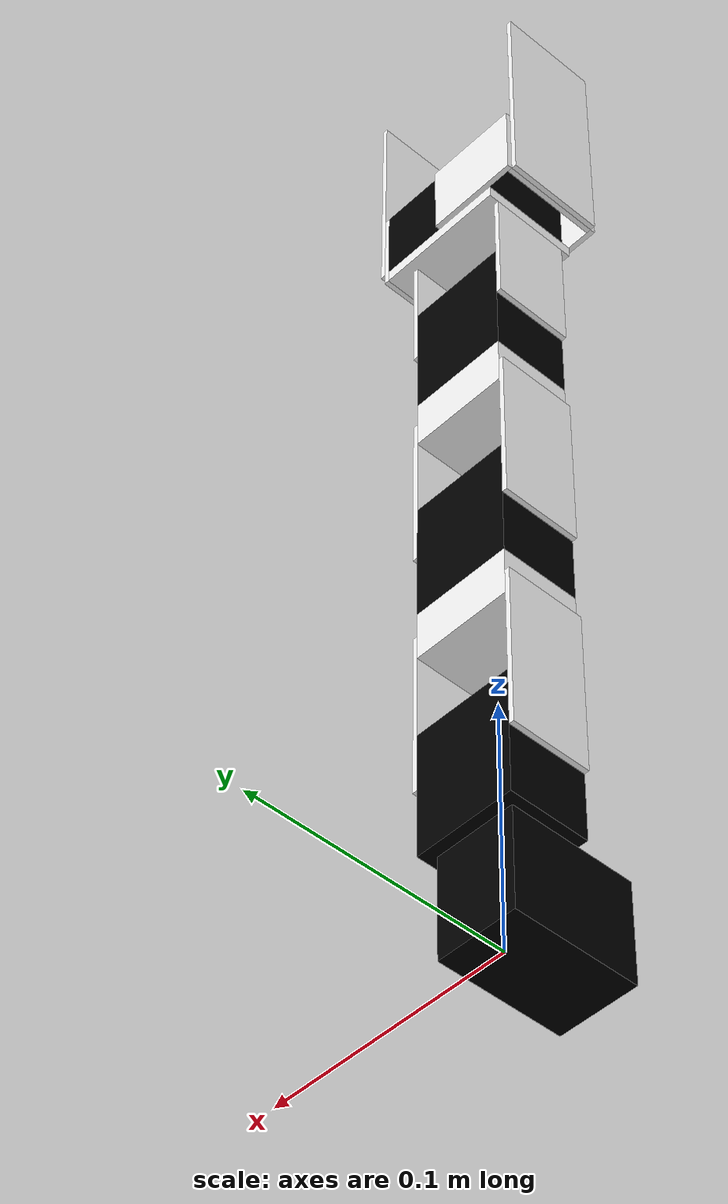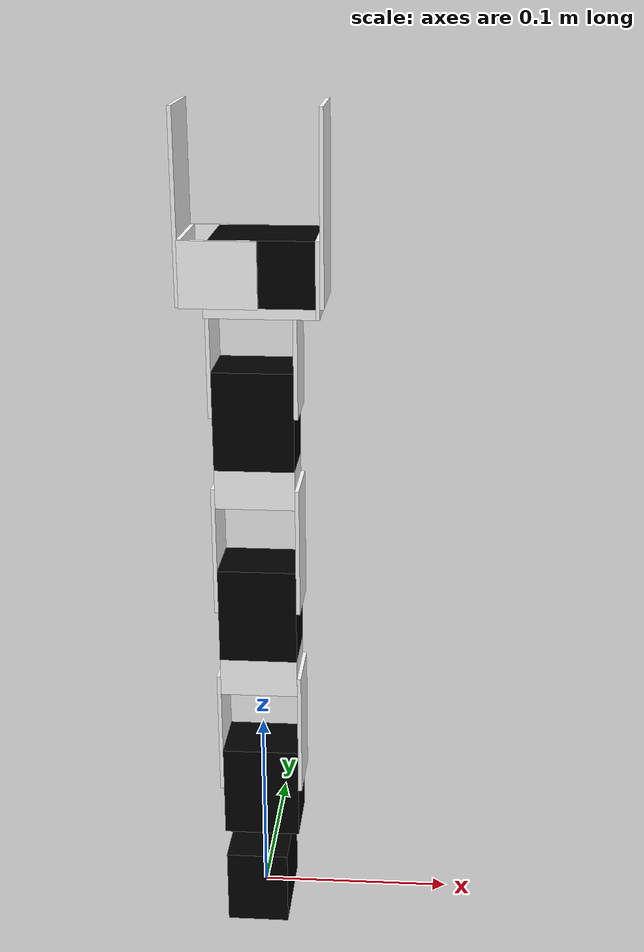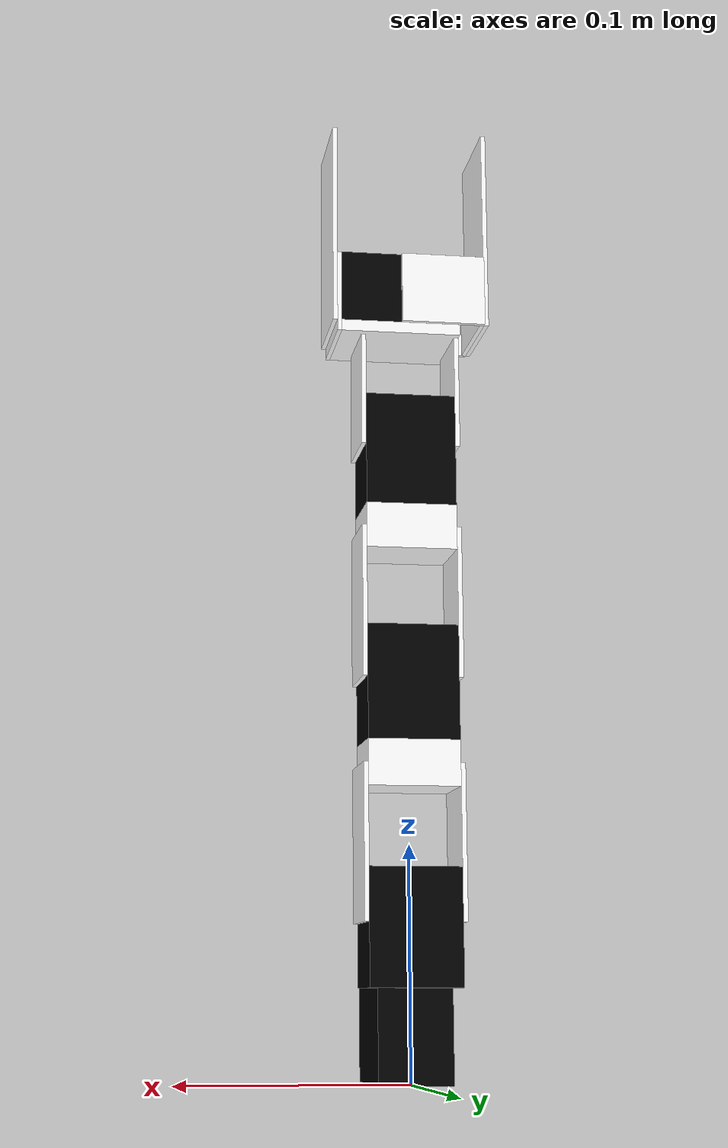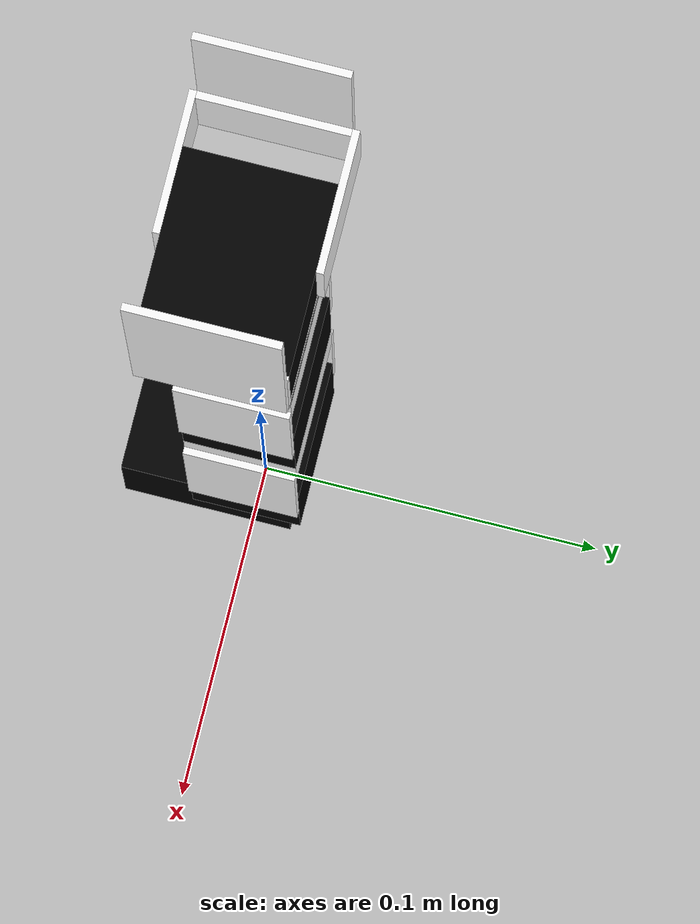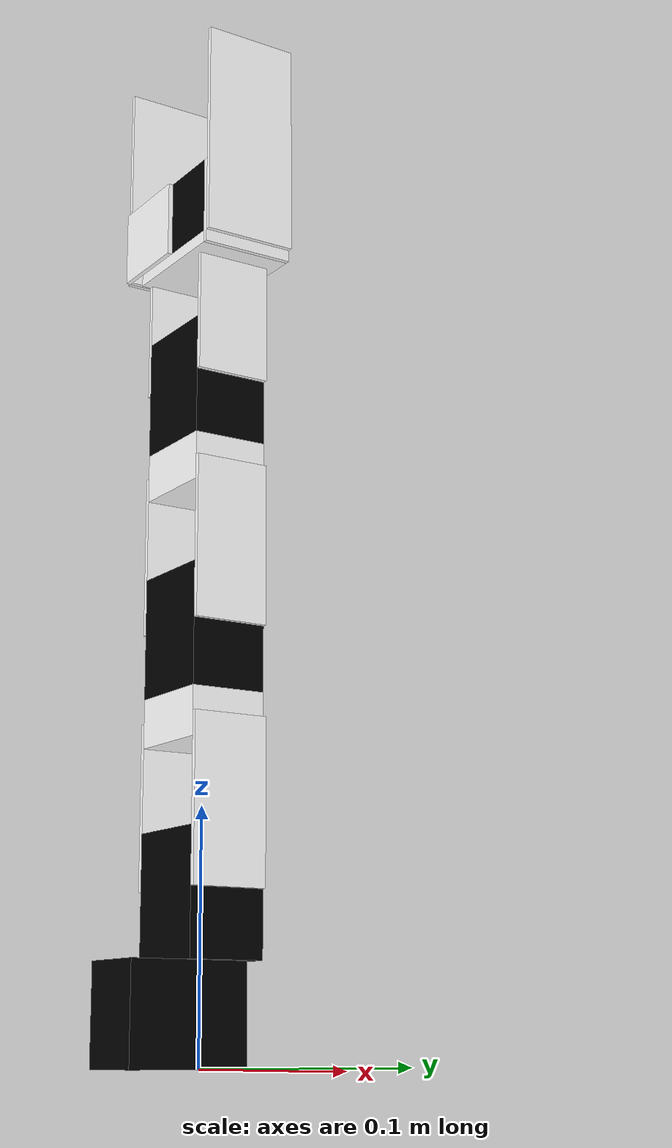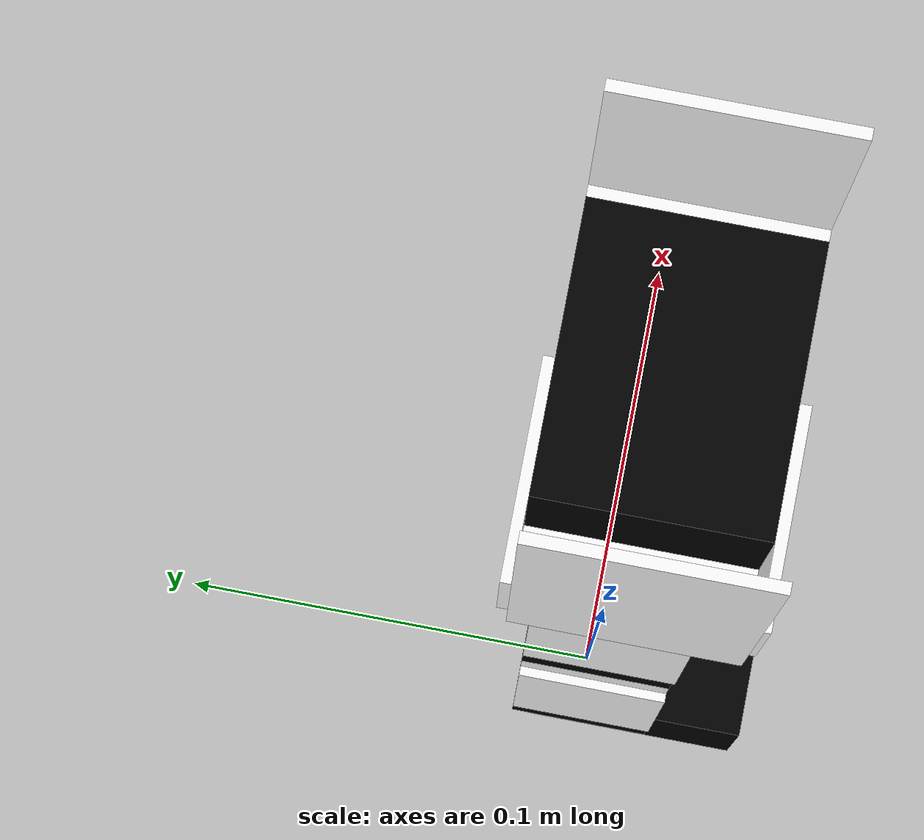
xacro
<?xml version="1.0"?>

<robot name="MYRAbot-arm"
       xmlns:xi="http://www.w3.org/2001/XInclude"
       xmlns:gazebo="http://playerstage.sourceforge.net/gazebo/xmlschema/#gz"
       xmlns:model="http://playerstage.sourceforge.net/gazebo/xmlschema/#model"
       xmlns:sensor="http://playerstage.sourceforge.net/gazebo/xmlschema/#sensor"
       xmlns:body="http://playerstage.sourceforge.net/gazebo/xmlschema/#body"
       xmlns:geom="http://playerstage.sourceforge.net/gazebo/xmlschema/#geom"
       xmlns:joint="http://playerstage.sourceforge.net/gazebo/xmlschema/#joint"
       xmlns:interface="http://playerstage.sourceforge.net/gazebo/xmlschema/#interface"
       xmlns:rendering="http://playerstage.sourceforge.net/gazebo/xmlschema/#rendering"
       xmlns:renderable="http://playerstage.sourceforge.net/gazebo/xmlschema/#renderable"
       xmlns:controller="http://playerstage.sourceforge.net/gazebo/xmlschema/#controller"
       xmlns:physics="http://playerstage.sourceforge.net/gazebo/xmlschema/#physics"
       xmlns:xacro="http://ros.org/wiki/xacro">

	<xacro:include filename="$(find myrabot_arm_model_b)/urdf/brazo.xacro" />

	<link name="world" />

	<brazo parent="world">
		<origin rpy="0 0 0" xyz="0 0 0"/>
	</brazo>

</robot>

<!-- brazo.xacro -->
<robot xmlns:xacro="http://ros.org/wiki/xacro">

	<xacro:include filename="$(find myrabot_arm_model_b)/urdf/brazo-macros.xacro" />

<xacro:macro name="brazo" params="parent *origin">

  <joint name="fixed" type="fixed">
    <parent link="${parent}"/>
    <child link="base_brazo_link"/>
    <insert_block name="origin" />
    <axis xyz="0 0 1" />
  </joint>

  <link name="base_brazo_link">
    <visual>
      <geometry>
        <box size="0.032 0.05 0.04"/>
      </geometry>
      <origin rpy="0 0 0" xyz="0 -0.0135 0.020"/>
      <material name="black">
        <color rgba="0 0 0 1"/>
      </material>
    </visual>
    <collision>
      <origin rpy="0 0 0" xyz="0 -0.0135 0.020"/>
      <geometry>
        <box size="0.032 0.05 0.04"/>
      </geometry>
    </collision>
    <inertial>
      <origin rpy="0 0 0" xyz="0 -0.0135 0.020"/>
      <mass value="0.055"/>
	  <default_inertia_servos />
    </inertial>
  </link>

  <joint name="base_brazo" type="revolute">
    <parent link="base_brazo_link"/>
    <child link="hombro_link"/>
    <origin xyz="0 0 0.04" rpy="0 0 0" />
    <axis xyz="0 0 1" />
	<default_limit />
	<default_dynamics />
  </joint>

  <link name="hombro_link">
    <visual>
      <geometry>
        <box size="0.04 0.032 0.05"/>
      </geometry>
      <origin rpy="0 0 0" xyz="0 0 0.025"/>
      <material name="black" />
    </visual>
    <collision>
      <origin rpy="0 0 0" xyz="0 0 0.025"/>
	  <geometry>
        <box size="0.04 0.032 0.05"/>
      </geometry>
    </collision>
    <inertial>
      <origin rpy="0 0 0" xyz="0 0 0.025"/>
      <mass value="0.055"/>
	  <default_inertia_servos />
    </inertial>
  </link>

  <joint name="arti1" type="revolute">
    <parent link="hombro_link"/>
    <child link="brazo_link"/>
    <origin xyz="0 0 0.0385" rpy="0 0 0" />
	<axis xyz="1 0 0" />
	<default_limit />
	<default_dynamics />
  </joint>

  <!--brazo-->

<servo nombre="brazo" />

  <joint name="servo_arti1_B" type="fixed">
    <parent link="brazo_link"/>
    <child link="brazo_link_B"/>
    <origin xyz="0 0 0" rpy="0 0 0" />
	<axis xyz="1 0 0" />
  </joint>

<base nombre="brazo" />

  <joint name="servo_arti1_D" type="fixed">
    <parent link="brazo_link"/>
    <child link="brazo_link_SI"/>
    <origin xyz="0 0 0" rpy="0 0 0" />
	<axis xyz="1 0 0" />
  </joint>

<soporte nombre="brazo" simetrico="1" lado="I" />

  <joint name="servo_arti1_I" type="fixed">
    <parent link="brazo_link"/>
    <child link="brazo_link_SD"/>
    <origin xyz="0 0 0" rpy="0 0 0" />
	<axis xyz="1 0 0" />
  </joint>

<soporte nombre="brazo" simetrico="-1" lado="D" />

  <joint name="arti2" type="revolute">
    <parent link="brazo_link"/>
    <child link="antebrazo_link"/>
    <origin xyz="0 0 0.104" rpy="0 0 0" />
    <axis xyz="1 0 0" />
	<default_limit />
	<default_dynamics />
  </joint>

  <!--antebrazo-->

<servo nombre="antebrazo" />

  <joint name="servo_arti2_B" type="fixed">
    <parent link="antebrazo_link"/>
    <child link="antebrazo_link_B"/>
    <origin xyz="0 0 0" rpy="0 0 0" />
	<axis xyz="1 0 0" />
  </joint>

<base nombre="antebrazo" />

  <joint name="servo_arti2_D" type="fixed">
    <parent link="antebrazo_link"/>
    <child link="antebrazo_link_SI"/>
    <origin xyz="0 0 0" rpy="0 0 0" />
	<axis xyz="1 0 0" />
  </joint>

<soporte nombre="antebrazo" simetrico="1" lado="I" />

  <joint name="servo_arti2_I" type="fixed">
    <parent link="antebrazo_link"/>
    <child link="antebrazo_link_SD"/>
    <origin xyz="0 0 0" rpy="0 0 0" />
	<axis xyz="1 0 0" />
  </joint>

<soporte nombre="antebrazo" simetrico="-1" lado="D" />

  <joint name="arti3" type="revolute">
    <parent link="antebrazo_link"/>
    <child link="muneca_link"/>
    <origin xyz="0 0 0.104" rpy="0 0 0" />
    <axis xyz="1 0 0" />
	<default_limit />
	<default_dynamics />
  </joint>

  <!--muneca-->

  <link name="muneca_link">
    <visual>
      <geometry>
        <box size="0.05 0.04 0.032"/>
      </geometry>
      <origin rpy="0 0 0" xyz="0.00625 0 0.06"/>
      <material name="black" />
    </visual>
    <collision>
      <origin rpy="0 0 0" xyz="0.00625 0 0.06"/>
	  <geometry>
        <box size="0.05 0.04 0.032"/>
      </geometry>
    </collision>
    <inertial>
      <origin rpy="0 0 0" xyz="0.00625 0 0.06"/>
      <mass value="0.055"/>
	  <default_inertia_servos />
    </inertial>
  </link>

  <joint name="servo_arti3_B" type="fixed">
    <parent link="muneca_link"/>
    <child link="muneca_link_B"/>
    <origin xyz="0 0 0" rpy="0 0 0" />
	<axis xyz="1 0 0" />
  </joint>

  <link name="muneca_link_B">
	<visual>
      <geometry>
        <box size="0.05325 0.04 0.005"/>
      </geometry>
      <origin rpy="0 0 0" xyz="0.004625 0 0.0415"/>
      <material name="white">
		<color rgba="1 1 1 1"/>
      </material>
    </visual>
    <collision>
      <origin rpy="0 0 0" xyz="0.004625 0 0.0415"/>
	  <geometry>
        <box size="0.05325 0.04 0.005"/>
      </geometry>
    </collision>
    <inertial>
      <origin rpy="0 0 0" xyz="0.004625 0 0.0415"/>
      <mass value="0.0005"/>
	  <default_inertia />
    </inertial>
  </link>

  <joint name="servo_arti3_D" type="fixed">
    <parent link="muneca_link"/>
    <child link="muneca_link_SI"/>
    <origin xyz="0 0 0" rpy="0 0 0" />
	<axis xyz="1 0 0" />
  </joint>

  <link name="muneca_link_SI">
	<visual>
      <geometry>
        <box size="0.002 0.032 0.0555"/>
      </geometry>
      <origin rpy="0 0 0" xyz="0.021 0 0.01625"/>
      <material name="white">
		<color rgba="1 1 1 1"/>
      </material>
    </visual>
    <collision>
      <origin rpy="0 0 0" xyz="0.021 0 0.01625"/>
	  <geometry>
        <box size="0.002 0.032 0.0555"/>
      </geometry>
    </collision>
    <inertial>
      <origin rpy="0 0 0" xyz="0.021 0 0.01625"/>
      <mass value="0.0005"/>
	  <default_inertia />
    </inertial>
  </link>

  <joint name="servo_arti3_I" type="fixed">
    <parent link="muneca_link"/>
    <child link="muneca_link_SD"/>
    <origin xyz="0 0 0" rpy="0 0 0" />
	<axis xyz="1 0 0" />
  </joint>

  <link name="muneca_link_SD">
	<visual>
      <geometry>
        <box size="0.002 0.032 0.0555"/>
      </geometry>
      <origin rpy="0 0 0" xyz="-0.021 0 0.01625"/>
      <material name="white">
		<color rgba="1 1 1 1"/>
      </material>
    </visual>
    <collision>
      <origin rpy="0 0 0" xyz="-0.021 0 0.01625"/>
	  <geometry>
        <box size="0.002 0.032 0.0555"/>
      </geometry>
    </collision>
    <inertial>
      <origin rpy="0 0 0" xyz="-0.021 0 0.01625"/>
      <mass value="0.0005"/>
	  <default_inertia />
    </inertial>
  </link>

  <joint name="servo_arti3_P" type="fixed">
    <parent link="muneca_link"/>
    <child link="muneca_link_P"/>
    <origin xyz="0 0 0" rpy="0 0 0" />
	<axis xyz="1 0 0" />
  </joint>

  <!--pinza izquierda fija-->

  <link name="muneca_link_P">
	<visual>
      <geometry>
        <box size="0.002 0.04 0.092"/>
      </geometry>
      <origin rpy="0 0 0" xyz="0.03425 0 0.090"/>
      <material name="white">
		<color rgba="1 1 1 1"/>
      </material>
    </visual>
    <collision>
      <origin rpy="0 0 0" xyz="0.03425 0 0.090"/>
	  <geometry>
        <box size="0.002 0.04 0.092"/>
      </geometry>
    </collision>
    <inertial>
      <origin rpy="0 0 0" xyz="0.03425 0 0.090"/>
      <mass value="0.001"/>
	  <default_inertia />
    </inertial>
  </link>

  <joint name="servo_arti3_PS" type="fixed">
    <parent link="muneca_link"/>
    <child link="muneca_link_PS"/>
    <origin xyz="0 0 0" rpy="0 0 0" />
	<axis xyz="1 0 0" />
  </joint>

  <link name="muneca_link_PS">
	<visual>
      <geometry>
        <box size="0.002 0.04 0.037"/>
      </geometry>
      <origin rpy="0 0 0" xyz="0.03225 0 0.0575"/>
      <material name="white">
		<color rgba="1 1 1 1"/>
      </material>
    </visual>
    <collision>
      <origin rpy="0 0 0" xyz="0.03225 0 0.0575"/>
	  <geometry>
        <box size="0.002 0.04 0.037"/>
      </geometry>
    </collision>
    <inertial>
      <origin rpy="0 0 0" xyz="0.03225 0 0.0575"/>
      <mass value="0.0005"/>
	  <default_inertia />
    </inertial>
  </link>

  <joint name="pinza" type="revolute">
    <parent link="muneca_link"/>
    <child link="pinza_link"/>
    <origin xyz="-0.00725 0 0.06" rpy="0 0 0" />
    <axis xyz="0 1 0" />
	<default_limit />
	<default_dynamics />
  </joint>

  <!--pinza-->

  <link name="pinza_link">
	<visual>
      <geometry>
        <box size="0.002 0.04 0.092"/>
      </geometry>
      <origin rpy="0 0 0" xyz="-0.027 0 0.030"/>
      <material name="white">
		<color rgba="1 1 1 1"/>
      </material>
    </visual>
    <collision>
      <origin rpy="0 0 0" xyz="-0.027 0 0.030"/>
	  <geometry>
        <box size="0.002 0.04 0.092"/>
      </geometry>
    </collision>
    <inertial>
      <origin rpy="0 0 0" xyz="-0.027 0 0.030"/>
      <mass value="0.001"/>
 	  <default_inertia />
    </inertial>
  </link>

  <joint name="servo_pinza_B" type="fixed">
    <parent link="pinza_link"/>
    <child link="pinza_link_B"/>
    <origin xyz="0 0 0" rpy="0 0 0" />
	<axis xyz="1 0 0" />
  </joint>

  <link name="pinza_link_B">
	<visual>
      <geometry>
        <box size="0.002 0.04 0.032"/>
      </geometry>
      <origin rpy="0 0 0" xyz="-0.025 0 0"/>
      <material name="white">
		<color rgba="1 1 1 1"/>
      </material>
    </visual>
    <collision>
      <origin rpy="0 0 0" xyz="-0.025 0 0"/>
	  <geometry>
        <box size="0.002 0.04 0.032"/>
      </geometry>
    </collision>
    <inertial>
      <origin rpy="0 0 0" xyz="-0.025 0 0"/>
      <mass value="0.0005"/>
	  <default_inertia />
    </inertial>
  </link>

  <joint name="servo_pinza_D" type="fixed">
    <parent link="pinza_link"/>
    <child link="pinza_link_SI"/>
    <origin xyz="0 0 0" rpy="0 0 0" />
	<axis xyz="1 0 0" />
  </joint>

  <link name="pinza_link_SI">
	<visual>
      <geometry>
        <box size="0.0375 0.002 0.032"/>
      </geometry>
      <origin rpy="0 0 0" xyz="-0.00725 0.021 0"/>
      <material name="white">
		<color rgba="1 1 1 1"/>
      </material>
    </visual>
    <collision>
      <origin rpy="0 0 0" xyz="-0.00725 0.021 0"/>
	  <geometry>
        <box size="0.0375 0.002 0.032"/>
      </geometry>
    </collision>
    <inertial>
      <origin rpy="0 0 0" xyz="-0.00725 0.021 0"/>
      <mass value="0.0005"/>
	  <default_inertia />
    </inertial>
  </link>

  <joint name="servo_pinza_I" type="fixed">
    <parent link="pinza_link"/>
    <child link="pinza_link_SD"/>
    <origin xyz="0 0 0" rpy="0 0 0" />
	<axis xyz="1 0 0" />
  </joint>

  <link name="pinza_link_SD">
	<visual>
      <geometry>
        <box size="0.0375 0.002 0.032"/>
      </geometry>
      <origin rpy="0 0 0" xyz="-0.00725 -0.021 0"/>
      <material name="white">
		<color rgba="1 1 1 1"/>
      </material>
    </visual>
    <collision>
      <origin rpy="0 0 0" xyz="-0.00725 -0.021 0"/>
	  <geometry>
        <box size="0.0375 0.002 0.032"/>
      </geometry>
    </collision>
    <inertial>
      <origin rpy="0 0 0" xyz="-0.00725 -0.021 0"/>
      <mass value="0.0005"/>
	  <default_inertia />
    </inertial>
  </link>

<gazebo_propiedades_link nombre="base_brazo_link" material="brazo_fer/Black" />

<gazebo_propiedades_link nombre="hombro_link" material="brazo_fer/Black" />

<gazebo_propiedades_link nombre="brazo_link" material="brazo_fer/Black" />

<gazebo_propiedades_link nombre="antebrazo_link" material="brazo_fer/Black" />

<gazebo_propiedades_link nombre="muneca_link" material="brazo_fer/Black" />

<gazebo_propiedades_link nombre="brazo_link_B" material="brazo_fer/White" />

<gazebo_propiedades_link nombre="brazo_link_SI" material="brazo_fer/White" />

<gazebo_propiedades_link nombre="brazo_link_SD" material="brazo_fer/White" />

<gazebo_propiedades_link nombre="antebrazo_link_B" material="brazo_fer/White" />

<gazebo_propiedades_link nombre="antebrazo_link_SI" material="brazo_fer/White" />

<gazebo_propiedades_link nombre="antebrazo_link_SD" material="brazo_fer/White" />

<gazebo_propiedades_link nombre="muneca_link_B" material="brazo_fer/White" />

<gazebo_propiedades_link nombre="muneca_link_SI" material="brazo_fer/White" />

<gazebo_propiedades_link nombre="muneca_link_SD" material="brazo_fer/White" />

<gazebo_propiedades_link nombre="muneca_link_P" material="brazo_fer/WhiteTransparent" />

<gazebo_propiedades_link nombre="muneca_link_PS" material="brazo_fer/White" />

<gazebo_propiedades_link nombre="pinza_link" material="brazo_fer/WhiteTransparent" />

<gazebo_propiedades_link nombre="pinza_link_B" material="brazo_fer/White" />

<gazebo_propiedades_link nombre="pinza_link_SI" material="brazo_fer/White" />

<gazebo_propiedades_link nombre="pinza_link_SD" material="brazo_fer/White" />

<gazebo_propiedades_joint nombre="base_brazo" />

<gazebo_propiedades_joint nombre="arti1" />

<gazebo_propiedades_joint nombre="arti2" />

<gazebo_propiedades_joint nombre="arti3" />

<gazebo_propiedades_joint nombre="pinza" />

</xacro:macro>

</robot>

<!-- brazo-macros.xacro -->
<robot xmlns:controller="http://playerstage.sourceforge.net/gazebo/xmlschema/#controller" xmlns:xacro="http://ros.org/wiki/xacro">

<xacro:macro name="default_inertia">
      <inertia ixx="0.001" ixy="0.0" ixz="0.0" iyy="0.001" iyz="0.0" izz="0.001"/>
</xacro:macro>

<xacro:macro name="default_inertia_servos">
      <inertia ixx="0.01" ixy="0.0" ixz="0.0" iyy="0.01" iyz="0.0" izz="0.01"/>
</xacro:macro>

<xacro:macro name="default_limit">
    <limit effort="1.5" lower="-2.62" upper="2.62" velocity="3"/>
</xacro:macro>

<xacro:macro name="default_dynamics">
      <dynamics fricction="0" damping="0" />
</xacro:macro>

<xacro:macro name="servo" params="nombre">
  <link name="${nombre}_link">
    <visual>
      <geometry>
        <box size="0.04 0.032 0.05"/>
      </geometry>
      <origin rpy="0 0 0" xyz="0 0 0.0905"/>
      <material name="black" />
    </visual>
    <collision>
      <origin rpy="0 0 0" xyz="0 0 0.0905"/>
	  <geometry>
        <box size="0.04 0.032 0.05"/>
      </geometry>
    </collision>
    <inertial>
      <origin rpy="0 0 0" xyz="0 0 0.0905"/>
      <mass value="0.055"/>
	  <default_inertia_servos />
    </inertial>
  </link>
</xacro:macro>

<xacro:macro name="base" params="nombre">
  <link name="${nombre}_link_B">
	<visual>
      <geometry>
        <box size="0.04 0.032 0.020"/>
      </geometry>
      <origin rpy="0 0 0" xyz="0 0 0.0555"/>
      <material name="white">
		<color rgba="1 1 1 1"/>
      </material>
    </visual>
    <collision>
      <origin rpy="0 0 0" xyz="0 0 0.0555"/>
	  <geometry>
        <box size="0.04 0.032 0.02"/>
      </geometry>
    </collision>
    <inertial>
      <origin rpy="0 0 0" xyz="0 0 0.0555"/>
      <mass value="0.001"/>
	  <default_inertia />
    </inertial>
  </link>
</xacro:macro>

<xacro:macro name="soporte" params="nombre simetrico lado">
  <link name="${nombre}_link_S${lado}">
	<visual>
      <geometry>
        <box size="0.002 0.032 0.067"/>
      </geometry>
      <origin rpy="0 0 0" xyz="${simetrico*0.021} 0 0.022"/>
      <material name="white">
		<color rgba="1 1 1 1"/>
      </material>
    </visual>
    <collision>
      <origin rpy="0 0 0" xyz="${simetrico*0.021} 0 0.022"/>
	  <geometry>
        <box size="0.002 0.032 0.067"/>
      </geometry>
    </collision>
    <inertial>
      <origin rpy="0 0 0" xyz="${simetrico*0.021} 0 0.022"/>
      <mass value="0.001"/>
	  <default_inertia />
    </inertial>
  </link>
</xacro:macro>

<xacro:macro name="gazebo_propiedades_link" params="nombre material">
  <gazebo reference="${nombre}">
	<mu1>100</mu1>
	<mu2>100</mu2>
	<kp>100000000000</kp>
	<kd>1000000000</kd>
	<material>${material}</material>
    <selfCollide>true</selfCollide>
    <turnGravityOff>false</turnGravityOff>
  </gazebo>
</xacro:macro>

<xacro:macro name="gazebo_propiedades_joint" params="nombre">
 <gazebo reference="${nombre}">
    <erp>0.1</erp>
    <stopKd value="100000000.0" />
    <stopKp value="100000000.0" />
    <fudgeFactor value="0.5" />
 </gazebo>
</xacro:macro>

<gazebo>
  <plugin name="gazebo_ros_control" filename="libgazebo_ros_control.so">
    <robotNamespace>/brazo</robotNamespace>
  </plugin>
</gazebo>

  <transmission name="base_trans">
    <type>transmission_interface/SimpleTransmission</type>
    <joint name="base_brazo"/>
    <actuator name="base_motor">
      <hardwareInterface>PositionJointInterface</hardwareInterface>
      <mechanicalReduction>1</mechanicalReduction>
    </actuator>
  </transmission>

  <transmission name="arti1_trans">
    <type>transmission_interface/SimpleTransmission</type>
    <joint name="arti1"/>
    <actuator name="arti1_motor">
      <hardwareInterface>PositionJointInterface</hardwareInterface>
      <mechanicalReduction>1</mechanicalReduction>
    </actuator>
  </transmission>

  <transmission name="arti2_trans">
    <type>transmission_interface/SimpleTransmission</type>
    <joint name="arti2"/>
    <actuator name="arti3_motor">
      <hardwareInterface>PositionJointInterface</hardwareInterface>
      <mechanicalReduction>1</mechanicalReduction>
    </actuator>
  </transmission>

  <transmission name="arti3_trans">
    <type>transmission_interface/SimpleTransmission</type>
    <joint name="arti3"/>
    <actuator name="arti3_motor">
      <hardwareInterface>PositionJointInterface</hardwareInterface>
      <mechanicalReduction>1</mechanicalReduction>
    </actuator>
  </transmission>

  <transmission name="pinza_trans">
    <type>transmission_interface/SimpleTransmission</type>
    <joint name="pinza"/>
    <actuator name="pinza_motor">
      <hardwareInterface>PositionJointInterface</hardwareInterface>
      <mechanicalReduction>1</mechanicalReduction>
    </actuator>
  </transmission>

</robot>
